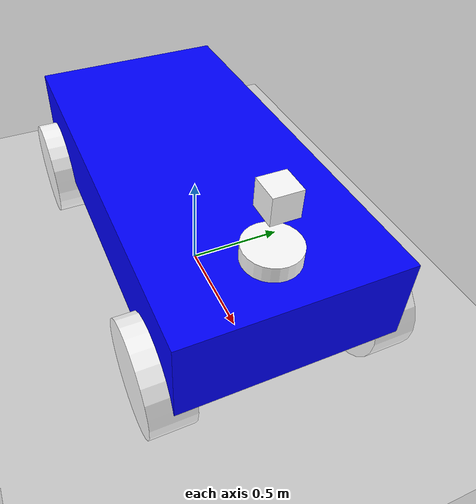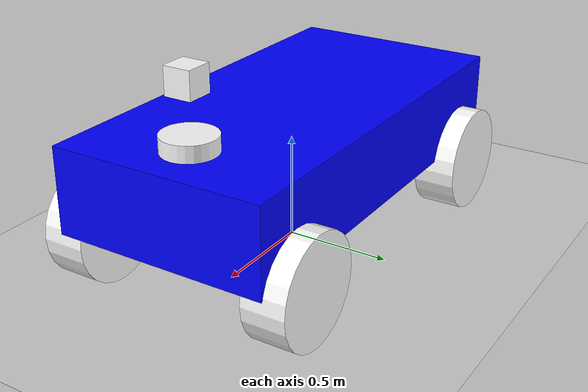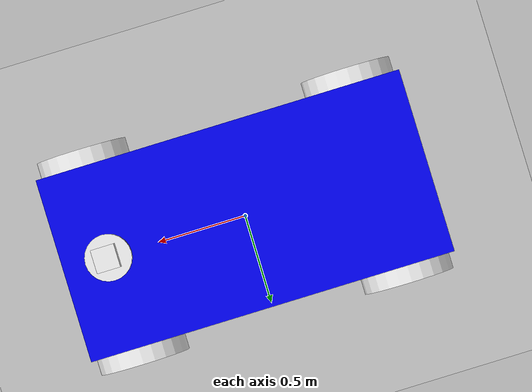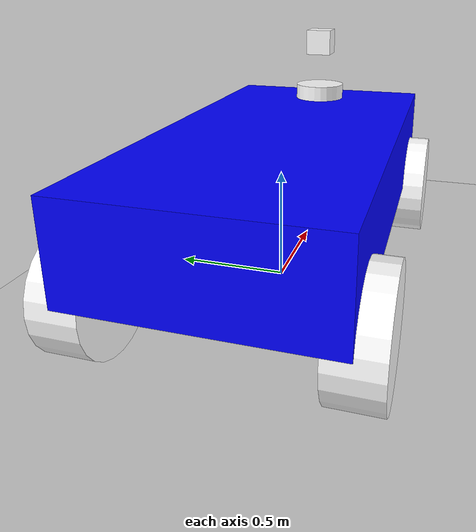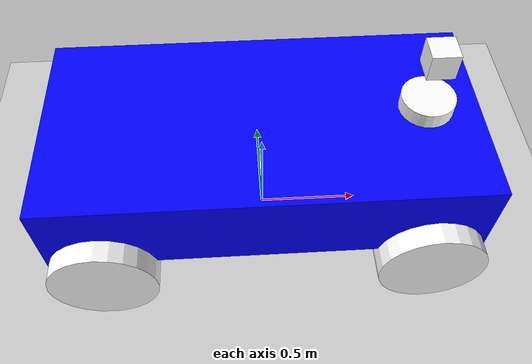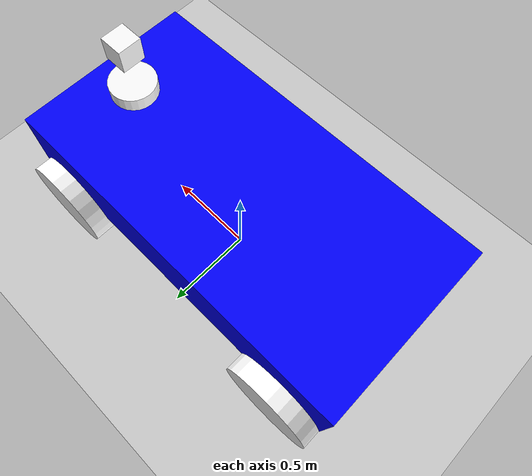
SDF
<?xml version='1.0' encoding='ASCII'?>
<sdf version='1.9'>
    <world name='empty_world'>
        <physics type="ode">
            <max_step_size>0.004</max_step_size>
            <real_time_factor>1.0</real_time_factor>
            <real_time_update_rate>250</real_time_update_rate>
        </physics>
        <plugin name='gz::sim::systems::Physics' filename='gz-sim-physics-system' />
        <plugin name='gz::sim::systems::UserCommands' filename='gz-sim-user-commands-system' />
        <plugin name='gz::sim::systems::SceneBroadcaster' filename='gz-sim-scene-broadcaster-system' />
        <plugin name='gz::sim::systems::Contact' filename='gz-sim-contact-system' />
        <plugin name='gz::sim::systems::Imu' filename='gz-sim-imu-system' />
        <plugin name='gz::sim::systems::AirPressure' filename='gz-sim-air-pressure-system' />
        <plugin name='gz::sim::systems::Sensors' filename='gz-sim-sensors-system'>
            <render_engine>ogre2</render_engine>
        </plugin>
        <scene>
            <grid>false</grid>
            <ambient>0.4 0.4 0.4 1</ambient>
            <background>0.7 0.7 0.7 1</background>
            <shadows>true</shadows>
        </scene>

        <light name='sunUTC' type='directional'>
            <pose>0 0 500 0 -0 0</pose>
            <cast_shadows>true</cast_shadows>
            <intensity>1</intensity>
            <direction>0.001 0.625 -0.78</direction>
            <diffuse>0.904 0.904 0.904 1</diffuse>
            <specular>0.271 0.271 0.271 1</specular>
            <attenuation>
                <range>2000</range>
                <linear>0</linear>
                <constant>1</constant>
                <quadratic>0</quadratic>
            </attenuation>
            <spot>
                <inner_angle>0</inner_angle>
                <outer_angle>0</outer_angle>
                <falloff>0</falloff>
            </spot>
        </light>

        <model name='ground_plane'>
            <static>true</static>
            <link name='link'>
                <collision name='collision'>
                    <geometry>
                        <plane>
                            <normal>0 0 1</normal>
                            <size>1 1</size>
                        </plane>
                    </geometry>
                    <surface>
                        <friction>
                            <ode />
                        </friction>
                        <bounce />
                        <contact />
                    </surface>
                </collision>
                <visual name='visual'>
                    <geometry>
                        <plane>
                            <normal>0 0 1</normal>
                            <size>100 100</size>
                        </plane>
                    </geometry>
                    <material>
                        <ambient>0.8 0.8 0.8 1</ambient>
                        <diffuse>0.8 0.8 0.8 1</diffuse>
                        <specular>0.8 0.8 0.8 1</specular>
                    </material>
                </visual>
                <pose>0 0 0 0 -0 0</pose>
                <inertial>
                    <pose>0 0 0 0 -0 0</pose>
                    <mass>1</mass>
                    <inertia>
                        <ixx>1</ixx>
                        <ixy>0</ixy>
                        <ixz>0</ixz>
                        <iyy>1</iyy>
                        <iyz>0</iyz>
                        <izz>1</izz>
                    </inertia>
                </inertial>
                <enable_wind>false</enable_wind>
            </link>
            <pose>0 0 0 0 -0 0</pose>
            <self_collide>false</self_collide>
        </model>

        <!--nomeer_robot -->
        <include>
            <pose>0 0 0 0 0 0</pose>
            <uri>
                src/robot_description/models/nomeer_robot/robot.sdf</uri>
        </include>

    </world>
</sdf>

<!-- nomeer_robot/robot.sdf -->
<sdf version="1.9">

    <!-- nomeer_robot model -->
    <model name='nomeer_robot' canonical_link='base_link'>

        <static>false</static>
        <self_collide>false</self_collide>

        <!-- links-->
        <!-- base_footprint -->
        <link name="base_footprint" />

        <!-- base_link -->
        <link name="base_link">

            <pose relative_to='__model__'>0 0 0.5 0 0 0</pose>

            <inertial>
                <mass>10.0</mass>
                <inertia>
                    <ixx>0.018</ixx>
                    <ixy>0</ixy>
                    <ixz>0</ixz>
                    <iyy>0.084</iyy>
                    <iyz>0</iyz>
                    <izz>0.084</izz>
                </inertia>
            </inertial>

            <visual
                name='visual'>
                <geometry>
                    <box>
                        <size>2 1 0.4</size>
                    </box>
                </geometry>
                <material> <!-- blue color -->
                    <ambient>0.0 0.0 1.0 1</ambient>
                    <diffuse>0.0 0.0 1.0 1</diffuse>
                    <specular>0.0 0.0 1.0 1</specular>
                </material>
            </visual>

            <collision
                name='collision'>
                <geometry>
                    <box>
                        <size>2 1 0.4</size>
                    </box>
                </geometry>
            </collision>

        </link>

        <!-- front_right_wheel_link-->
        <link name="front_right_wheel_link">

            <pose relative_to="base_link">0.75 -0.5 -0.25 1.5707 0 0</pose>

            <inertial>
                <mass>0.05</mass>
                <inertia>
                    <ixx>0.0003331</ixx>
                    <ixy>0</ixy>
                    <ixz>0</ixz>
                    <iyy>0.000204</iyy>
                    <iyz>0</iyz>
                    <izz>0.000204</izz>
                </inertia>
            </inertial>

            <visual name='visual'>
                <geometry>
                    <cylinder>
                        <radius>0.25</radius>
                        <length>0.2</length>
                    </cylinder>
                </geometry>
                <material> <!-- white color -->
                    <ambient>1.0 1.0 1.0 1.0</ambient>
                    <diffuse>1.0 1.0 1.0 1.0</diffuse>
                    <specular>1.0 1.0 1.0 1.0</specular>
                </material>
            </visual>

            <collision name='collision'>
                <geometry>
                    <cylinder>
                        <radius>0.25</radius>
                        <length>0.2</length>
                    </cylinder>
                </geometry>
                <surface>
                    <friction>
                        <ode>
                            <mu>1.0</mu>
                            <mu2>0.5</mu2>
                            <fdir1>1 0 0</fdir1>
                        </ode>
                    </friction>
                </surface>
            </collision>

        </link>

        <!-- front_left_wheel_link-->
        <link name="front_left_wheel_link">

            <pose relative_to="base_link">0.75 0.5 -0.25 1.5707 0 0</pose>

            <inertial>
                <mass>0.05</mass>
                <inertia>
                    <ixx>0.0003331</ixx>
                    <ixy>0</ixy>
                    <ixz>0</ixz>
                    <iyy>0.000204</iyy>
                    <iyz>0</iyz>
                    <izz>0.000204</izz>
                </inertia>
            </inertial>

            <visual name='visual'>
                <geometry>
                    <cylinder>
                        <radius>0.25</radius>
                        <length>0.2</length>
                    </cylinder>
                </geometry>
                <material> <!-- white color -->
                    <ambient>1.0 1.0 1.0 1.0</ambient>
                    <diffuse>1.0 1.0 1.0 1.0</diffuse>
                    <specular>1.0 1.0 1.0 1.0</specular>
                </material>
            </visual>

            <collision name='collision'>
                <geometry>
                    <cylinder>
                        <radius>0.25</radius>
                        <length>0.2</length>
                    </cylinder>
                </geometry>
                <surface>
                    <friction>
                        <ode>
                            <mu>1.0</mu>
                            <mu2>0.5</mu2>
                            <fdir1>1 0 0</fdir1>
                        </ode>
                    </friction>
                </surface>
            </collision>

        </link>

        <!-- steering_front_right_link -->
        <link name="steering_front_right_link">

            <pose relative_to="base_link">0.75 -0.5 -0.25 1.5707 0 0</pose>

            <inertial>
                <mass>0.05</mass>
                <inertia>
                    <ixx>0.000018</ixx>
                    <iyy>0.000018</iyy>
                    <izz>0.000018</izz>
                </inertia>
            </inertial>

        </link>

        <!-- steering_front_left_link -->
        <link name="steering_front_left_link">

            <pose relative_to="base_link">0.75 0.5 -0.25 1.5707 0 0</pose>

            <inertial>
                <mass>0.05</mass>
                <inertia>
                    <ixx>0.000018</ixx>
                    <iyy>0.000018</iyy>
                    <izz>0.000018</izz>
                </inertia>
            </inertial>

        </link>

        <!-- rear_right_wheel_link-->
        <link name="rear_right_wheel_link">

            <pose relative_to="base_link">-0.75 -0.5 -0.25 1.5707 0 0</pose>

            <inertial>
                <mass>0.05</mass>
                <inertia>
                    <ixx>0.0003331</ixx>
                    <ixy>0</ixy>
                    <ixz>0</ixz>
                    <iyy>0.000204</iyy>
                    <iyz>0</iyz>
                    <izz>0.000204</izz>
                </inertia>
            </inertial>

            <visual name='visual'>
                <geometry>
                    <cylinder>
                        <radius>0.25</radius>
                        <length>0.2</length>
                    </cylinder>
                </geometry>
                <material> <!-- white color -->
                    <ambient>1.0 1.0 1.0 1.0</ambient>
                    <diffuse>1.0 1.0 1.0 1.0</diffuse>
                    <specular>1.0 1.0 1.0 1.0</specular>
                </material>
            </visual>

            <collision name='collision'>
                <geometry>
                    <cylinder>
                        <radius>0.25</radius>
                        <length>0.2</length>
                    </cylinder>
                </geometry>
                <surface>
                    <friction>
                        <ode>
                            <mu>1.0</mu>
                            <mu2>0.5</mu2>
                            <fdir1>1 0 0</fdir1>
                        </ode>
                    </friction>
                </surface>
            </collision>

        </link>

        <!-- rear_left_wheel_link-->
        <link name="rear_left_wheel_link">

            <pose relative_to="base_link">-0.75 0.5 -0.25 1.5707 0 0</pose>

            <inertial>
                <mass>0.05</mass>
                <inertia>
                    <ixx>0.0003331</ixx>
                    <ixy>0</ixy>
                    <ixz>0</ixz>
                    <iyy>0.000204</iyy>
                    <iyz>0</iyz>
                    <izz>0.000204</izz>
                </inertia>
            </inertial>

            <visual name='visual'>
                <geometry>
                    <cylinder>
                        <radius>0.25</radius>
                        <length>0.2</length>
                    </cylinder>
                </geometry>
                <material> <!-- white color -->
                    <ambient>1.0 1.0 1.0 1.0</ambient>
                    <diffuse>1.0 1.0 1.0 1.0</diffuse>
                    <specular>1.0 1.0 1.0 1.0</specular>
                </material>
            </visual>

            <collision name='collision'>
                <geometry>
                    <cylinder>
                        <radius>0.25</radius>
                        <length>0.2</length>
                    </cylinder>
                </geometry>
                <surface>
                    <friction>
                        <ode>
                            <mu>1.0</mu>
                            <mu2>0.5</mu2>
                            <fdir1>1 0 0</fdir1>
                        </ode>
                    </friction>
                </surface>
            </collision>

        </link>

        <!-- camera_link-->
        <link name="camera_link">

            <pose relative_to="base_link">0.75 0 0.5 0 0 0</pose>

            <visual name='visual'>
                <geometry>
                    <box>
                        <size>0.125 0.125 0.125</size>
                    </box>
                </geometry>
                <material> <!-- white color -->
                    <ambient>1.0 1.0 1.0 1.0</ambient>
                    <diffuse>1.0 1.0 1.0 1.0</diffuse>
                    <specular>1.0 1.0 1.0 1.0</specular>
                </material>
            </visual>

            <collision name='collision'>
                <geometry>
                    <box>
                        <size>0.125 0.125 0.125</size>
                    </box>
                </geometry>
            </collision>

            <sensor name="camera" type="camera">
                <pose relative_to='camera_link'>0 0 0 0 0 0</pose>
                <topic>camera</topic>
                <camera>
                    <horizontal_fov>1.047</horizontal_fov>
                    <image>
                        <width>320</width>
                        <height>240</height>
                    </image>
                    <clip>
                        <near>0.1</near>
                        <far>100</far>
                    </clip>
                </camera>
                <always_on>1</always_on>
                <update_rate>10</update_rate>
                <visualize>true</visualize>
            </sensor>

        </link>

        <!-- lidar_link-->
        <link name="lidar_link">

            <pose relative_to="base_link">0.75 0 0.2125 0 0 0</pose>

            <visual name='visual'>
                <geometry>
                    <cylinder>
                        <radius>0.125</radius>
                        <length>0.125</length>
                    </cylinder>
                </geometry>
                <material> <!-- white color -->
                    <ambient>1.0 1.0 1.0 1.0</ambient>
                    <diffuse>1.0 1.0 1.0 1.0</diffuse>
                    <specular>1.0 1.0 1.0 1.0</specular>
                </material>
            </visual>

            <collision name='collision'>
                <geometry>
                    <cylinder>
                        <radius>0.125</radius>
                        <length>0.125</length>
                    </cylinder>
                </geometry>
            </collision>

            <sensor name='gpu_lidar' type='gpu_lidar'>
                <pose relative_to='lidar_link'>0 0 0 0 0 0</pose>
                <topic>lidar</topic>
                <update_rate>10</update_rate>
                <ray>
                    <scan>
                        <horizontal>
                            <samples>400</samples>
                            <resolution>1</resolution>
                            <min_angle>-1.5707</min_angle>
                            <max_angle>1.5707</max_angle>
                        </horizontal>
                        <vertical>
                            <samples>1</samples>
                            <resolution>0.01</resolution>
                            <min_angle>0</min_angle>
                            <max_angle>0</max_angle>
                        </vertical>
                    </scan>
                    <range>
                        <min>0.15</min>
                        <max>25.0</max>
                        <resolution>0.01</resolution>
                    </range>
                </ray>
                <gz_frame_id>lidar_link</gz_frame_id>
                <always_on>1</always_on>
                <visualize>true</visualize>
            </sensor>

        </link>

        <!-- joins -->
        <!-- base_joint -->
        <joint name="base_joint" type="fixed">
            <pose relative_to='base_link' />
            <parent>base_link</parent>
            <child>base_footprint</child>
        </joint>

        <!-- steering_front_right_joint -->
        <joint name="steering_front_right_joint" type="revolute">
            <pose relative_to="steering_front_right_link" />
            <parent>base_link</parent>
            <child>steering_front_right_link</child>
            <axis>
                <xyz>0 1 0</xyz>
                <limit>
                    <lower>-0.6</lower>
                    <upper>0.6</upper>
                    <velocity>1000</velocity>
                    <effort>1000</effort>
                </limit>
            </axis>
        </joint>

        <!-- steering_front_left_joint -->
        <joint name="steering_front_left_joint" type="revolute">
            <pose relative_to="steering_front_left_link" />
            <parent>base_link</parent>
            <child>steering_front_left_link</child>
            <axis>
                <xyz>0 1 0</xyz>
                <limit>
                    <lower>-0.6</lower>
                    <upper>0.6</upper>
                    <velocity>1000</velocity>
                    <effort>1000</effort>
                </limit>
            </axis>
        </joint>

        <!-- front_right_wheel_joint -->
        <joint name='front_right_wheel_joint' type='revolute'>
            <pose relative_to='front_right_wheel_link' />
            <parent>steering_front_right_link</parent>
            <child>front_right_wheel_link</child>
            <axis>
                <xyz>0 0 -1</xyz>
                <limit>
                    <lower>-1.79769e+308</lower>
                    <upper>1.79769e+308</upper>
                </limit>
                <dynamics>
                    <spring_reference>0</spring_reference>
                    <spring_stiffness>0</spring_stiffness>
                </dynamics>
            </axis>
        </joint>

        <!-- front_left_wheel_joint -->
        <joint name='front_left_wheel_joint' type='revolute'>
            <pose relative_to='front_left_wheel_link' />
            <parent>steering_front_left_link</parent>
            <child>front_left_wheel_link</child>
            <axis>
                <xyz>0 0 -1</xyz>
                <limit>
                    <lower>-1.79769e+308</lower>
                    <upper>1.79769e+308</upper>
                </limit>
                <dynamics>
                    <spring_reference>0</spring_reference>
                    <spring_stiffness>0</spring_stiffness>
                </dynamics>
            </axis>
        </joint>

        <!-- rear_right_wheel_joint -->
        <joint name='rear_right_wheel_joint' type='revolute'>
            <pose relative_to='rear_right_wheel_link' />
            <parent>base_link</parent>
            <child>rear_right_wheel_link</child>
            <axis>
                <xyz>0 0 -1</xyz>
                <limit>
                    <lower>-1.79769e+308</lower>
                    <upper>1.79769e+308</upper>
                </limit>
                <dynamics>
                    <spring_reference>0</spring_reference>
                    <spring_stiffness>0</spring_stiffness>
                </dynamics>
            </axis>
        </joint>

        <!-- rear_left_wheel_joint -->
        <joint name='rear_left_wheel_joint' type='revolute'>
            <pose relative_to='rear_left_wheel_link' />
            <parent>base_link</parent>
            <child>rear_left_wheel_link</child>
            <axis>
                <xyz>0 0 -1</xyz>
                <limit>
                    <lower>-1.79769e+308</lower>
                    <upper>1.79769e+308</upper>
                </limit>
                <dynamics>
                    <spring_reference>0</spring_reference>
                    <spring_stiffness>0</spring_stiffness>
                </dynamics>
            </axis>
        </joint>

        <!-- camera_joint -->
        <joint name="camera_joint" type="fixed">
            <pose relative_to='camera_link' />
            <parent>base_link</parent>
            <child>camera_link</child>
        </joint>

        <!-- lidar_joint -->
        <joint name="lidar_joint" type="fixed">
            <pose relative_to='lidar_link' />
            <parent>base_link</parent>
            <child>lidar_link</child>
        </joint>

        <!-- ackermann plugin -->
        <plugin
            filename="gz-sim-ackermann-steering-system"
            name="gz::sim::systems::AckermannSteering">
            <steering_only>false</steering_only>
            <left_joint>rear_left_wheel_joint</left_joint>
            <left_joint>front_left_wheel_joint</left_joint>
            <right_joint>rear_right_wheel_joint</right_joint>
            <right_joint>front_right_wheel_joint</right_joint>
            <left_steering_joint>steering_front_left_joint</left_steering_joint>
            <right_steering_joint>steering_front_right_joint</right_steering_joint>
            <kingpin_width>0.9</kingpin_width>
            <steering_limit>0.8</steering_limit>
            <wheel_base>2</wheel_base>
            <wheel_separation>1</wheel_separation>
            <wheel_radius>0.25</wheel_radius>
            <min_velocity>-1.0</min_velocity>
            <max_velocity>1.0</max_velocity>
            <min_acceleration>-1</min_acceleration>
            <max_acceleration>1</max_acceleration>
            <topic>cmd_vel</topic>
            <odom_topic>odom</odom_topic>
            <frame_id>odom</frame_id>
            <child_frame_id>base_link</child_frame_id>
        </plugin>

        <!-- joint state publisher plugin -->
        <plugin
            filename="gz-sim-joint-state-publisher-system"
            name="gz::sim::systems::JointStatePublisher">
            <joint_name>base_joint</joint_name>
            <joint_name>front_left_wheel_joint</joint_name>
            <joint_name>rear_left_wheel_joint</joint_name>
            <joint_name>rear_right_wheel_joint</joint_name>
            <joint_name>front_right_wheel_joint</joint_name>
            <joint_name>steering_front_left_joint</joint_name>
            <joint_name>steering_front_right_joint</joint_name>
        </plugin>

        <!-- odometry publisher plugin -->
        <plugin
            filename="gz-sim-odometry-publisher-system"
            name="gz::sim::systems::OdometryPublisher">
            <odom_frame>odom</odom_frame>
            <odom_covariance_topic>odometry_with_covariance</odom_covariance_topic>
            <tf_topic>tf</tf_topic>
            <robot_base_frame>base_footprint</robot_base_frame>
            <odom_topic>odom</odom_topic>
        </plugin>
    </model>

</sdf>
